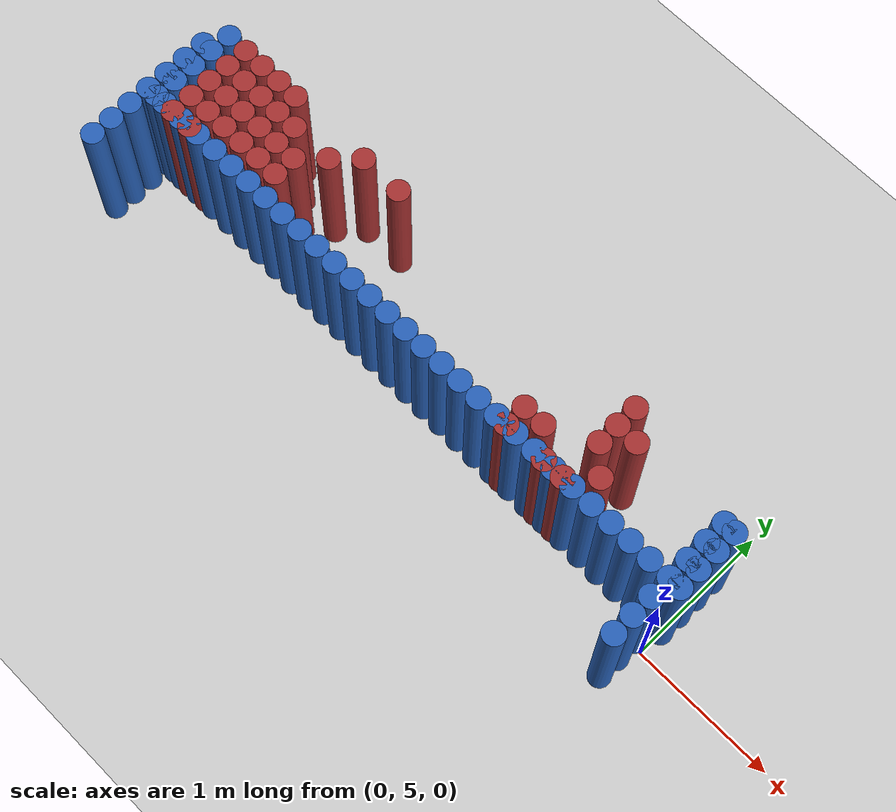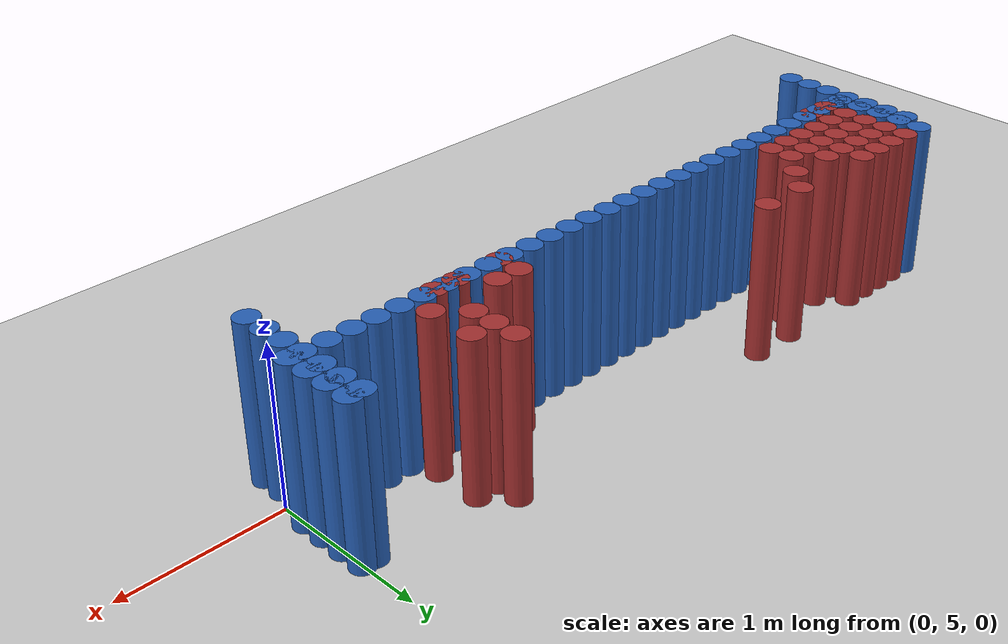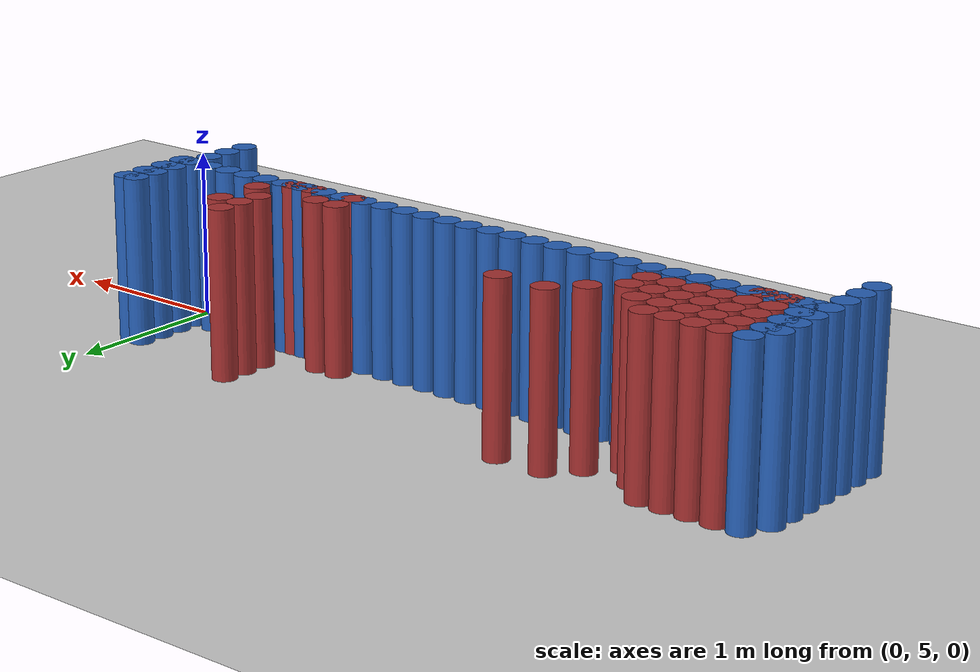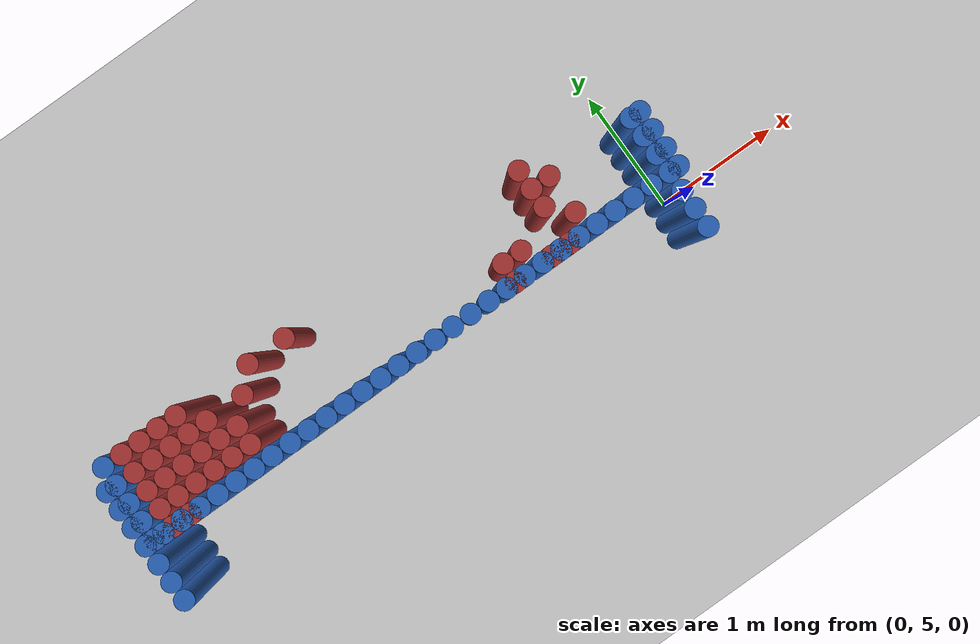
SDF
<sdf version="1.6">
 <world name="barn_world">
  <model name="ground_plane">
   <static>1</static>
   <link name="link">
    <collision name="collision">
     <geometry><plane><normal>0 0 1</normal><size>100 100</size></plane></geometry>
    </collision>
    <visual name="visual">
     <geometry><plane><normal>0 0 1</normal><size>100 100</size></plane></geometry>
     <material>
      <script><uri>file://media/materials/scripts/gazebo.material</uri><name>Gazebo/Grey</name></script>
     </material>
    </visual>
   </link>
  </model>
  <model name="unit_cylinder_90">
   <static>1</static>
   <pose>-0.0750 4.7250 0.5 0 0 0</pose>
   <link name="link">
    <collision name="collision">
     <geometry><cylinder><radius>0.075</radius><length>1</length></cylinder></geometry>
    </collision>
    <visual name="visual">
     <geometry><cylinder><radius>0.075</radius><length>1</length></cylinder></geometry>
     <material><ambient>0.152 0.379 0.72 1</ambient><diffuse>0.152 0.379 0.72 1</diffuse></material>
    </visual>
   </link>
  </model>
  <model name="unit_cylinder_91">
   <static>1</static>
   <pose>-4.4250 4.7250 0.5 0 0 0</pose>
   <link name="link">
    <collision name="collision">
     <geometry><cylinder><radius>0.075</radius><length>1</length></cylinder></geometry>
    </collision>
    <visual name="visual">
     <geometry><cylinder><radius>0.075</radius><length>1</length></cylinder></geometry>
     <material><ambient>0.152 0.379 0.72 1</ambient><diffuse>0.152 0.379 0.72 1</diffuse></material>
    </visual>
   </link>
  </model>
  <model name="unit_cylinder_92">
   <static>1</static>
   <pose>-0.0750 4.8750 0.5 0 0 0</pose>
   <link name="link">
    <collision name="collision">
     <geometry><cylinder><radius>0.075</radius><length>1</length></cylinder></geometry>
    </collision>
    <visual name="visual">
     <geometry><cylinder><radius>0.075</radius><length>1</length></cylinder></geometry>
     <material><ambient>0.152 0.379 0.72 1</ambient><diffuse>0.152 0.379 0.72 1</diffuse></material>
    </visual>
   </link>
  </model>
  <model name="unit_cylinder_93">
   <static>1</static>
   <pose>-4.4250 4.8750 0.5 0 0 0</pose>
   <link name="link">
    <collision name="collision">
     <geometry><cylinder><radius>0.075</radius><length>1</length></cylinder></geometry>
    </collision>
    <visual name="visual">
     <geometry><cylinder><radius>0.075</radius><length>1</length></cylinder></geometry>
     <material><ambient>0.152 0.379 0.72 1</ambient><diffuse>0.152 0.379 0.72 1</diffuse></material>
    </visual>
   </link>
  </model>
  <model name="unit_cylinder_94">
   <static>1</static>
   <pose>-0.0750 5.0250 0.5 0 0 0</pose>
   <link name="link">
    <collision name="collision">
     <geometry><cylinder><radius>0.075</radius><length>1</length></cylinder></geometry>
    </collision>
    <visual name="visual">
     <geometry><cylinder><radius>0.075</radius><length>1</length></cylinder></geometry>
     <material><ambient>0.152 0.379 0.72 1</ambient><diffuse>0.152 0.379 0.72 1</diffuse></material>
    </visual>
   </link>
  </model>
  <model name="unit_cylinder_95">
   <static>1</static>
   <pose>-4.4250 5.0250 0.5 0 0 0</pose>
   <link name="link">
    <collision name="collision">
     <geometry><cylinder><radius>0.075</radius><length>1</length></cylinder></geometry>
    </collision>
    <visual name="visual">
     <geometry><cylinder><radius>0.075</radius><length>1</length></cylinder></geometry>
     <material><ambient>0.152 0.379 0.72 1</ambient><diffuse>0.152 0.379 0.72 1</diffuse></material>
    </visual>
   </link>
  </model>
  <model name="unit_cylinder_96">
   <static>1</static>
   <pose>-0.0750 5.1750 0.5 0 0 0</pose>
   <link name="link">
    <collision name="collision">
     <geometry><cylinder><radius>0.075</radius><length>1</length></cylinder></geometry>
    </collision>
    <visual name="visual">
     <geometry><cylinder><radius>0.075</radius><length>1</length></cylinder></geometry>
     <material><ambient>0.152 0.379 0.72 1</ambient><diffuse>0.152 0.379 0.72 1</diffuse></material>
    </visual>
   </link>
  </model>
  <model name="unit_cylinder_97">
   <static>1</static>
   <pose>-0.2250 5.1750 0.5 0 0 0</pose>
   <link name="link">
    <collision name="collision">
     <geometry><cylinder><radius>0.075</radius><length>1</length></cylinder></geometry>
    </collision>
    <visual name="visual">
     <geometry><cylinder><radius>0.075</radius><length>1</length></cylinder></geometry>
     <material><ambient>0.152 0.379 0.72 1</ambient><diffuse>0.152 0.379 0.72 1</diffuse></material>
    </visual>
   </link>
  </model>
  <model name="unit_cylinder_98">
   <static>1</static>
   <pose>-0.3750 5.1750 0.5 0 0 0</pose>
   <link name="link">
    <collision name="collision">
     <geometry><cylinder><radius>0.075</radius><length>1</length></cylinder></geometry>
    </collision>
    <visual name="visual">
     <geometry><cylinder><radius>0.075</radius><length>1</length></cylinder></geometry>
     <material><ambient>0.152 0.379 0.72 1</ambient><diffuse>0.152 0.379 0.72 1</diffuse></material>
    </visual>
   </link>
  </model>
  <model name="unit_cylinder_99">
   <static>1</static>
   <pose>-0.5250 5.1750 0.5 0 0 0</pose>
   <link name="link">
    <collision name="collision">
     <geometry><cylinder><radius>0.075</radius><length>1</length></cylinder></geometry>
    </collision>
    <visual name="visual">
     <geometry><cylinder><radius>0.075</radius><length>1</length></cylinder></geometry>
     <material><ambient>0.152 0.379 0.72 1</ambient><diffuse>0.152 0.379 0.72 1</diffuse></material>
    </visual>
   </link>
  </model>
  <model name="unit_cylinder_100">
   <static>1</static>
   <pose>-0.6750 5.1750 0.5 0 0 0</pose>
   <link name="link">
    <collision name="collision">
     <geometry><cylinder><radius>0.075</radius><length>1</length></cylinder></geometry>
    </collision>
    <visual name="visual">
     <geometry><cylinder><radius>0.075</radius><length>1</length></cylinder></geometry>
     <material><ambient>0.152 0.379 0.72 1</ambient><diffuse>0.152 0.379 0.72 1</diffuse></material>
    </visual>
   </link>
  </model>
  <model name="unit_cylinder_101">
   <static>1</static>
   <pose>-0.8250 5.1750 0.5 0 0 0</pose>
   <link name="link">
    <collision name="collision">
     <geometry><cylinder><radius>0.075</radius><length>1</length></cylinder></geometry>
    </collision>
    <visual name="visual">
     <geometry><cylinder><radius>0.075</radius><length>1</length></cylinder></geometry>
     <material><ambient>0.152 0.379 0.72 1</ambient><diffuse>0.152 0.379 0.72 1</diffuse></material>
    </visual>
   </link>
  </model>
  <model name="unit_cylinder_102">
   <static>1</static>
   <pose>-0.9750 5.1750 0.5 0 0 0</pose>
   <link name="link">
    <collision name="collision">
     <geometry><cylinder><radius>0.075</radius><length>1</length></cylinder></geometry>
    </collision>
    <visual name="visual">
     <geometry><cylinder><radius>0.075</radius><length>1</length></cylinder></geometry>
     <material><ambient>0.152 0.379 0.72 1</ambient><diffuse>0.152 0.379 0.72 1</diffuse></material>
    </visual>
   </link>
  </model>
  <model name="unit_cylinder_103">
   <static>1</static>
   <pose>-1.1250 5.1750 0.5 0 0 0</pose>
   <link name="link">
    <collision name="collision">
     <geometry><cylinder><radius>0.075</radius><length>1</length></cylinder></geometry>
    </collision>
    <visual name="visual">
     <geometry><cylinder><radius>0.075</radius><length>1</length></cylinder></geometry>
     <material><ambient>0.152 0.379 0.72 1</ambient><diffuse>0.152 0.379 0.72 1</diffuse></material>
    </visual>
   </link>
  </model>
  <model name="unit_cylinder_104">
   <static>1</static>
   <pose>-1.2750 5.1750 0.5 0 0 0</pose>
   <link name="link">
    <collision name="collision">
     <geometry><cylinder><radius>0.075</radius><length>1</length></cylinder></geometry>
    </collision>
    <visual name="visual">
     <geometry><cylinder><radius>0.075</radius><length>1</length></cylinder></geometry>
     <material><ambient>0.152 0.379 0.72 1</ambient><diffuse>0.152 0.379 0.72 1</diffuse></material>
    </visual>
   </link>
  </model>
  <model name="unit_cylinder_105">
   <static>1</static>
   <pose>-1.4250 5.1750 0.5 0 0 0</pose>
   <link name="link">
    <collision name="collision">
     <geometry><cylinder><radius>0.075</radius><length>1</length></cylinder></geometry>
    </collision>
    <visual name="visual">
     <geometry><cylinder><radius>0.075</radius><length>1</length></cylinder></geometry>
     <material><ambient>0.152 0.379 0.72 1</ambient><diffuse>0.152 0.379 0.72 1</diffuse></material>
    </visual>
   </link>
  </model>
  <model name="unit_cylinder_106">
   <static>1</static>
   <pose>-1.5750 5.1750 0.5 0 0 0</pose>
   <link name="link">
    <collision name="collision">
     <geometry><cylinder><radius>0.075</radius><length>1</length></cylinder></geometry>
    </collision>
    <visual name="visual">
     <geometry><cylinder><radius>0.075</radius><length>1</length></cylinder></geometry>
     <material><ambient>0.152 0.379 0.72 1</ambient><diffuse>0.152 0.379 0.72 1</diffuse></material>
    </visual>
   </link>
  </model>
  <model name="unit_cylinder_107">
   <static>1</static>
   <pose>-1.7250 5.1750 0.5 0 0 0</pose>
   <link name="link">
    <collision name="collision">
     <geometry><cylinder><radius>0.075</radius><length>1</length></cylinder></geometry>
    </collision>
    <visual name="visual">
     <geometry><cylinder><radius>0.075</radius><length>1</length></cylinder></geometry>
     <material><ambient>0.152 0.379 0.72 1</ambient><diffuse>0.152 0.379 0.72 1</diffuse></material>
    </visual>
   </link>
  </model>
  <model name="unit_cylinder_108">
   <static>1</static>
   <pose>-1.8750 5.1750 0.5 0 0 0</pose>
   <link name="link">
    <collision name="collision">
     <geometry><cylinder><radius>0.075</radius><length>1</length></cylinder></geometry>
    </collision>
    <visual name="visual">
     <geometry><cylinder><radius>0.075</radius><length>1</length></cylinder></geometry>
     <material><ambient>0.152 0.379 0.72 1</ambient><diffuse>0.152 0.379 0.72 1</diffuse></material>
    </visual>
   </link>
  </model>
  <model name="unit_cylinder_109">
   <static>1</static>
   <pose>-2.0250 5.1750 0.5 0 0 0</pose>
   <link name="link">
    <collision name="collision">
     <geometry><cylinder><radius>0.075</radius><length>1</length></cylinder></geometry>
    </collision>
    <visual name="visual">
     <geometry><cylinder><radius>0.075</radius><length>1</length></cylinder></geometry>
     <material><ambient>0.152 0.379 0.72 1</ambient><diffuse>0.152 0.379 0.72 1</diffuse></material>
    </visual>
   </link>
  </model>
  <model name="unit_cylinder_110">
   <static>1</static>
   <pose>-2.1750 5.1750 0.5 0 0 0</pose>
   <link name="link">
    <collision name="collision">
     <geometry><cylinder><radius>0.075</radius><length>1</length></cylinder></geometry>
    </collision>
    <visual name="visual">
     <geometry><cylinder><radius>0.075</radius><length>1</length></cylinder></geometry>
     <material><ambient>0.152 0.379 0.72 1</ambient><diffuse>0.152 0.379 0.72 1</diffuse></material>
    </visual>
   </link>
  </model>
  <model name="unit_cylinder_111">
   <static>1</static>
   <pose>-2.3250 5.1750 0.5 0 0 0</pose>
   <link name="link">
    <collision name="collision">
     <geometry><cylinder><radius>0.075</radius><length>1</length></cylinder></geometry>
    </collision>
    <visual name="visual">
     <geometry><cylinder><radius>0.075</radius><length>1</length></cylinder></geometry>
     <material><ambient>0.152 0.379 0.72 1</ambient><diffuse>0.152 0.379 0.72 1</diffuse></material>
    </visual>
   </link>
  </model>
  <model name="unit_cylinder_112">
   <static>1</static>
   <pose>-2.4750 5.1750 0.5 0 0 0</pose>
   <link name="link">
    <collision name="collision">
     <geometry><cylinder><radius>0.075</radius><length>1</length></cylinder></geometry>
    </collision>
    <visual name="visual">
     <geometry><cylinder><radius>0.075</radius><length>1</length></cylinder></geometry>
     <material><ambient>0.152 0.379 0.72 1</ambient><diffuse>0.152 0.379 0.72 1</diffuse></material>
    </visual>
   </link>
  </model>
  <model name="unit_cylinder_113">
   <static>1</static>
   <pose>-2.6250 5.1750 0.5 0 0 0</pose>
   <link name="link">
    <collision name="collision">
     <geometry><cylinder><radius>0.075</radius><length>1</length></cylinder></geometry>
    </collision>
    <visual name="visual">
     <geometry><cylinder><radius>0.075</radius><length>1</length></cylinder></geometry>
     <material><ambient>0.152 0.379 0.72 1</ambient><diffuse>0.152 0.379 0.72 1</diffuse></material>
    </visual>
   </link>
  </model>
  <model name="unit_cylinder_114">
   <static>1</static>
   <pose>-2.7750 5.1750 0.5 0 0 0</pose>
   <link name="link">
    <collision name="collision">
     <geometry><cylinder><radius>0.075</radius><length>1</length></cylinder></geometry>
    </collision>
    <visual name="visual">
     <geometry><cylinder><radius>0.075</radius><length>1</length></cylinder></geometry>
     <material><ambient>0.152 0.379 0.72 1</ambient><diffuse>0.152 0.379 0.72 1</diffuse></material>
    </visual>
   </link>
  </model>
  <model name="unit_cylinder_115">
   <static>1</static>
   <pose>-2.9250 5.1750 0.5 0 0 0</pose>
   <link name="link">
    <collision name="collision">
     <geometry><cylinder><radius>0.075</radius><length>1</length></cylinder></geometry>
    </collision>
    <visual name="visual">
     <geometry><cylinder><radius>0.075</radius><length>1</length></cylinder></geometry>
     <material><ambient>0.152 0.379 0.72 1</ambient><diffuse>0.152 0.379 0.72 1</diffuse></material>
    </visual>
   </link>
  </model>
  <model name="unit_cylinder_116">
   <static>1</static>
   <pose>-3.0750 5.1750 0.5 0 0 0</pose>
   <link name="link">
    <collision name="collision">
     <geometry><cylinder><radius>0.075</radius><length>1</length></cylinder></geometry>
    </collision>
    <visual name="visual">
     <geometry><cylinder><radius>0.075</radius><length>1</length></cylinder></geometry>
     <material><ambient>0.152 0.379 0.72 1</ambient><diffuse>0.152 0.379 0.72 1</diffuse></material>
    </visual>
   </link>
  </model>
  <model name="unit_cylinder_117">
   <static>1</static>
   <pose>-3.2250 5.1750 0.5 0 0 0</pose>
   <link name="link">
    <collision name="collision">
     <geometry><cylinder><radius>0.075</radius><length>1</length></cylinder></geometry>
    </collision>
    <visual name="visual">
     <geometry><cylinder><radius>0.075</radius><length>1</length></cylinder></geometry>
     <material><ambient>0.152 0.379 0.72 1</ambient><diffuse>0.152 0.379 0.72 1</diffuse></material>
    </visual>
   </link>
  </model>
  <model name="unit_cylinder_118">
   <static>1</static>
   <pose>-3.3750 5.1750 0.5 0 0 0</pose>
   <link name="link">
    <collision name="collision">
     <geometry><cylinder><radius>0.075</radius><length>1</length></cylinder></geometry>
    </collision>
    <visual name="visual">
     <geometry><cylinder><radius>0.075</radius><length>1</length></cylinder></geometry>
     <material><ambient>0.152 0.379 0.72 1</ambient><diffuse>0.152 0.379 0.72 1</diffuse></material>
    </visual>
   </link>
  </model>
  <model name="unit_cylinder_119">
   <static>1</static>
   <pose>-3.5250 5.1750 0.5 0 0 0</pose>
   <link name="link">
    <collision name="collision">
     <geometry><cylinder><radius>0.075</radius><length>1</length></cylinder></geometry>
    </collision>
    <visual name="visual">
     <geometry><cylinder><radius>0.075</radius><length>1</length></cylinder></geometry>
     <material><ambient>0.152 0.379 0.72 1</ambient><diffuse>0.152 0.379 0.72 1</diffuse></material>
    </visual>
   </link>
  </model>
  <model name="unit_cylinder_120">
   <static>1</static>
   <pose>-3.6750 5.1750 0.5 0 0 0</pose>
   <link name="link">
    <collision name="collision">
     <geometry><cylinder><radius>0.075</radius><length>1</length></cylinder></geometry>
    </collision>
    <visual name="visual">
     <geometry><cylinder><radius>0.075</radius><length>1</length></cylinder></geometry>
     <material><ambient>0.152 0.379 0.72 1</ambient><diffuse>0.152 0.379 0.72 1</diffuse></material>
    </visual>
   </link>
  </model>
  <model name="unit_cylinder_121">
   <static>1</static>
   <pose>-3.8250 5.1750 0.5 0 0 0</pose>
   <link name="link">
    <collision name="collision">
     <geometry><cylinder><radius>0.075</radius><length>1</length></cylinder></geometry>
    </collision>
    <visual name="visual">
     <geometry><cylinder><radius>0.075</radius><length>1</length></cylinder></geometry>
     <material><ambient>0.152 0.379 0.72 1</ambient><diffuse>0.152 0.379 0.72 1</diffuse></material>
    </visual>
   </link>
  </model>
  <model name="unit_cylinder_122">
   <static>1</static>
   <pose>-3.9750 5.1750 0.5 0 0 0</pose>
   <link name="link">
    <collision name="collision">
     <geometry><cylinder><radius>0.075</radius><length>1</length></cylinder></geometry>
    </collision>
    <visual name="visual">
     <geometry><cylinder><radius>0.075</radius><length>1</length></cylinder></geometry>
     <material><ambient>0.152 0.379 0.72 1</ambient><diffuse>0.152 0.379 0.72 1</diffuse></material>
    </visual>
   </link>
  </model>
  <model name="unit_cylinder_123">
   <static>1</static>
   <pose>-4.1250 5.1750 0.5 0 0 0</pose>
   <link name="link">
    <collision name="collision">
     <geometry><cylinder><radius>0.075</radius><length>1</length></cylinder></geometry>
    </collision>
    <visual name="visual">
     <geometry><cylinder><radius>0.075</radius><length>1</length></cylinder></geometry>
     <material><ambient>0.152 0.379 0.72 1</ambient><diffuse>0.152 0.379 0.72 1</diffuse></material>
    </visual>
   </link>
  </model>
  <model name="unit_cylinder_124">
   <static>1</static>
   <pose>-4.2750 5.1750 0.5 0 0 0</pose>
   <link name="link">
    <collision name="collision">
     <geometry><cylinder><radius>0.075</radius><length>1</length></cylinder></geometry>
    </collision>
    <visual name="visual">
     <geometry><cylinder><radius>0.075</radius><length>1</length></cylinder></geometry>
     <material><ambient>0.152 0.379 0.72 1</ambient><diffuse>0.152 0.379 0.72 1</diffuse></material>
    </visual>
   </link>
  </model>
  <model name="unit_cylinder_125">
   <static>1</static>
   <pose>-4.4250 5.1750 0.5 0 0 0</pose>
   <link name="link">
    <collision name="collision">
     <geometry><cylinder><radius>0.075</radius><length>1</length></cylinder></geometry>
    </collision>
    <visual name="visual">
     <geometry><cylinder><radius>0.075</radius><length>1</length></cylinder></geometry>
     <material><ambient>0.152 0.379 0.72 1</ambient><diffuse>0.152 0.379 0.72 1</diffuse></material>
    </visual>
   </link>
  </model>
  <model name="unit_cylinder_126">
   <static>1</static>
   <pose>-4.3500 5.1750 0.5 0 0 0</pose>
   <link name="link">
    <collision name="collision">
     <geometry><cylinder><radius>0.075</radius><length>1</length></cylinder></geometry>
    </collision>
    <visual name="visual">
     <geometry><cylinder><radius>0.075</radius><length>1</length></cylinder></geometry>
     <material><ambient>0.152 0.379 0.72 1</ambient><diffuse>0.152 0.379 0.72 1</diffuse></material>
    </visual>
   </link>
  </model>
  <model name="unit_cylinder_127">
   <static>1</static>
   <pose>-4.3500 5.3250 0.5 0 0 0</pose>
   <link name="link">
    <collision name="collision">
     <geometry><cylinder><radius>0.075</radius><length>1</length></cylinder></geometry>
    </collision>
    <visual name="visual">
     <geometry><cylinder><radius>0.075</radius><length>1</length></cylinder></geometry>
     <material><ambient>0.152 0.379 0.72 1</ambient><diffuse>0.152 0.379 0.72 1</diffuse></material>
    </visual>
   </link>
  </model>
  <model name="unit_cylinder_128">
   <static>1</static>
   <pose>-4.3500 5.4750 0.5 0 0 0</pose>
   <link name="link">
    <collision name="collision">
     <geometry><cylinder><radius>0.075</radius><length>1</length></cylinder></geometry>
    </collision>
    <visual name="visual">
     <geometry><cylinder><radius>0.075</radius><length>1</length></cylinder></geometry>
     <material><ambient>0.152 0.379 0.72 1</ambient><diffuse>0.152 0.379 0.72 1</diffuse></material>
    </visual>
   </link>
  </model>
  <model name="unit_cylinder_129">
   <static>1</static>
   <pose>-4.3500 5.6250 0.5 0 0 0</pose>
   <link name="link">
    <collision name="collision">
     <geometry><cylinder><radius>0.075</radius><length>1</length></cylinder></geometry>
    </collision>
    <visual name="visual">
     <geometry><cylinder><radius>0.075</radius><length>1</length></cylinder></geometry>
     <material><ambient>0.152 0.379 0.72 1</ambient><diffuse>0.152 0.379 0.72 1</diffuse></material>
    </visual>
   </link>
  </model>
  <model name="unit_cylinder_130">
   <static>1</static>
   <pose>-4.3500 5.7750 0.5 0 0 0</pose>
   <link name="link">
    <collision name="collision">
     <geometry><cylinder><radius>0.075</radius><length>1</length></cylinder></geometry>
    </collision>
    <visual name="visual">
     <geometry><cylinder><radius>0.075</radius><length>1</length></cylinder></geometry>
     <material><ambient>0.152 0.379 0.72 1</ambient><diffuse>0.152 0.379 0.72 1</diffuse></material>
    </visual>
   </link>
  </model>
  <model name="unit_cylinder_156">
   <static>1</static>
   <pose>-4.2000 5.1750 0.5 0 0 0</pose>
   <link name="link">
    <collision name="collision">
     <geometry><cylinder><radius>0.075</radius><length>1</length></cylinder></geometry>
    </collision>
    <visual name="visual">
     <geometry><cylinder><radius>0.075</radius><length>1</length></cylinder></geometry>
     <material><ambient>0.648 0.192 0.192 1</ambient><diffuse>0.648 0.192 0.192 1</diffuse></material>
    </visual>
   </link>
  </model>
  <model name="unit_cylinder_157">
   <static>1</static>
   <pose>-4.2000 5.3250 0.5 0 0 0</pose>
   <link name="link">
    <collision name="collision">
     <geometry><cylinder><radius>0.075</radius><length>1</length></cylinder></geometry>
    </collision>
    <visual name="visual">
     <geometry><cylinder><radius>0.075</radius><length>1</length></cylinder></geometry>
     <material><ambient>0.648 0.192 0.192 1</ambient><diffuse>0.648 0.192 0.192 1</diffuse></material>
    </visual>
   </link>
  </model>
  <model name="unit_cylinder_158">
   <static>1</static>
   <pose>-4.2000 5.4750 0.5 0 0 0</pose>
   <link name="link">
    <collision name="collision">
     <geometry><cylinder><radius>0.075</radius><length>1</length></cylinder></geometry>
    </collision>
    <visual name="visual">
     <geometry><cylinder><radius>0.075</radius><length>1</length></cylinder></geometry>
     <material><ambient>0.648 0.192 0.192 1</ambient><diffuse>0.648 0.192 0.192 1</diffuse></material>
    </visual>
   </link>
  </model>
  <model name="unit_cylinder_159">
   <static>1</static>
   <pose>-4.2000 5.6250 0.5 0 0 0</pose>
   <link name="link">
    <collision name="collision">
     <geometry><cylinder><radius>0.075</radius><length>1</length></cylinder></geometry>
    </collision>
    <visual name="visual">
     <geometry><cylinder><radius>0.075</radius><length>1</length></cylinder></geometry>
     <material><ambient>0.648 0.192 0.192 1</ambient><diffuse>0.648 0.192 0.192 1</diffuse></material>
    </visual>
   </link>
  </model>
  <model name="unit_cylinder_160">
   <static>1</static>
   <pose>-4.2000 5.7750 0.5 0 0 0</pose>
   <link name="link">
    <collision name="collision">
     <geometry><cylinder><radius>0.075</radius><length>1</length></cylinder></geometry>
    </collision>
    <visual name="visual">
     <geometry><cylinder><radius>0.075</radius><length>1</length></cylinder></geometry>
     <material><ambient>0.648 0.192 0.192 1</ambient><diffuse>0.648 0.192 0.192 1</diffuse></material>
    </visual>
   </link>
  </model>
  <model name="unit_cylinder_175">
   <static>1</static>
   <pose>-4.0500 5.1750 0.5 0 0 0</pose>
   <link name="link">
    <collision name="collision">
     <geometry><cylinder><radius>0.075</radius><length>1</length></cylinder></geometry>
    </collision>
    <visual name="visual">
     <geometry><cylinder><radius>0.075</radius><length>1</length></cylinder></geometry>
     <material><ambient>0.648 0.192 0.192 1</ambient><diffuse>0.648 0.192 0.192 1</diffuse></material>
    </visual>
   </link>
  </model>
  <model name="unit_cylinder_176">
   <static>1</static>
   <pose>-4.0500 5.3250 0.5 0 0 0</pose>
   <link name="link">
    <collision name="collision">
     <geometry><cylinder><radius>0.075</radius><length>1</length></cylinder></geometry>
    </collision>
    <visual name="visual">
     <geometry><cylinder><radius>0.075</radius><length>1</length></cylinder></geometry>
     <material><ambient>0.648 0.192 0.192 1</ambient><diffuse>0.648 0.192 0.192 1</diffuse></material>
    </visual>
   </link>
  </model>
  <model name="unit_cylinder_177">
   <static>1</static>
   <pose>-4.0500 5.4750 0.5 0 0 0</pose>
   <link name="link">
    <collision name="collision">
     <geometry><cylinder><radius>0.075</radius><length>1</length></cylinder></geometry>
    </collision>
    <visual name="visual">
     <geometry><cylinder><radius>0.075</radius><length>1</length></cylinder></geometry>
     <material><ambient>0.648 0.192 0.192 1</ambient><diffuse>0.648 0.192 0.192 1</diffuse></material>
    </visual>
   </link>
  </model>
  <model name="unit_cylinder_178">
   <static>1</static>
   <pose>-4.0500 5.6250 0.5 0 0 0</pose>
   <link name="link">
    <collision name="collision">
     <geometry><cylinder><radius>0.075</radius><length>1</length></cylinder></geometry>
    </collision>
    <visual name="visual">
     <geometry><cylinder><radius>0.075</radius><length>1</length></cylinder></geometry>
     <material><ambient>0.648 0.192 0.192 1</ambient><diffuse>0.648 0.192 0.192 1</diffuse></material>
    </visual>
   </link>
  </model>
  <model name="unit_cylinder_179">
   <static>1</static>
   <pose>-4.0500 5.7750 0.5 0 0 0</pose>
   <link name="link">
    <collision name="collision">
     <geometry><cylinder><radius>0.075</radius><length>1</length></cylinder></geometry>
    </collision>
    <visual name="visual">
     <geometry><cylinder><radius>0.075</radius><length>1</length></cylinder></geometry>
     <material><ambient>0.648 0.192 0.192 1</ambient><diffuse>0.648 0.192 0.192 1</diffuse></material>
    </visual>
   </link>
  </model>
  <model name="unit_cylinder_186">
   <static>1</static>
   <pose>-3.9000 5.3250 0.5 0 0 0</pose>
   <link name="link">
    <collision name="collision">
     <geometry><cylinder><radius>0.075</radius><length>1</length></cylinder></geometry>
    </collision>
    <visual name="visual">
     <geometry><cylinder><radius>0.075</radius><length>1</length></cylinder></geometry>
     <material><ambient>0.648 0.192 0.192 1</ambient><diffuse>0.648 0.192 0.192 1</diffuse></material>
    </visual>
   </link>
  </model>
  <model name="unit_cylinder_187">
   <static>1</static>
   <pose>-3.9000 5.4750 0.5 0 0 0</pose>
   <link name="link">
    <collision name="collision">
     <geometry><cylinder><radius>0.075</radius><length>1</length></cylinder></geometry>
    </collision>
    <visual name="visual">
     <geometry><cylinder><radius>0.075</radius><length>1</length></cylinder></geometry>
     <material><ambient>0.648 0.192 0.192 1</ambient><diffuse>0.648 0.192 0.192 1</diffuse></material>
    </visual>
   </link>
  </model>
  <model name="unit_cylinder_188">
   <static>1</static>
   <pose>-3.9000 5.6250 0.5 0 0 0</pose>
   <link name="link">
    <collision name="collision">
     <geometry><cylinder><radius>0.075</radius><length>1</length></cylinder></geometry>
    </collision>
    <visual name="visual">
     <geometry><cylinder><radius>0.075</radius><length>1</length></cylinder></geometry>
     <material><ambient>0.648 0.192 0.192 1</ambient><diffuse>0.648 0.192 0.192 1</diffuse></material>
    </visual>
   </link>
  </model>
  <model name="unit_cylinder_189">
   <static>1</static>
   <pose>-3.9000 5.7750 0.5 0 0 0</pose>
   <link name="link">
    <collision name="collision">
     <geometry><cylinder><radius>0.075</radius><length>1</length></cylinder></geometry>
    </collision>
    <visual name="visual">
     <geometry><cylinder><radius>0.075</radius><length>1</length></cylinder></geometry>
     <material><ambient>0.648 0.192 0.192 1</ambient><diffuse>0.648 0.192 0.192 1</diffuse></material>
    </visual>
   </link>
  </model>
  <model name="unit_cylinder_196">
   <static>1</static>
   <pose>-3.7500 5.3250 0.5 0 0 0</pose>
   <link name="link">
    <collision name="collision">
     <geometry><cylinder><radius>0.075</radius><length>1</length></cylinder></geometry>
    </collision>
    <visual name="visual">
     <geometry><cylinder><radius>0.075</radius><length>1</length></cylinder></geometry>
     <material><ambient>0.648 0.192 0.192 1</ambient><diffuse>0.648 0.192 0.192 1</diffuse></material>
    </visual>
   </link>
  </model>
  <model name="unit_cylinder_197">
   <static>1</static>
   <pose>-3.7500 5.4750 0.5 0 0 0</pose>
   <link name="link">
    <collision name="collision">
     <geometry><cylinder><radius>0.075</radius><length>1</length></cylinder></geometry>
    </collision>
    <visual name="visual">
     <geometry><cylinder><radius>0.075</radius><length>1</length></cylinder></geometry>
     <material><ambient>0.648 0.192 0.192 1</ambient><diffuse>0.648 0.192 0.192 1</diffuse></material>
    </visual>
   </link>
  </model>
  <model name="unit_cylinder_198">
   <static>1</static>
   <pose>-3.7500 5.6250 0.5 0 0 0</pose>
   <link name="link">
    <collision name="collision">
     <geometry><cylinder><radius>0.075</radius><length>1</length></cylinder></geometry>
    </collision>
    <visual name="visual">
     <geometry><cylinder><radius>0.075</radius><length>1</length></cylinder></geometry>
     <material><ambient>0.648 0.192 0.192 1</ambient><diffuse>0.648 0.192 0.192 1</diffuse></material>
    </visual>
   </link>
  </model>
  <model name="unit_cylinder_199">
   <static>1</static>
   <pose>-3.7500 5.7750 0.5 0 0 0</pose>
   <link name="link">
    <collision name="collision">
     <geometry><cylinder><radius>0.075</radius><length>1</length></cylinder></geometry>
    </collision>
    <visual name="visual">
     <geometry><cylinder><radius>0.075</radius><length>1</length></cylinder></geometry>
     <material><ambient>0.648 0.192 0.192 1</ambient><diffuse>0.648 0.192 0.192 1</diffuse></material>
    </visual>
   </link>
  </model>
  <model name="unit_cylinder_207">
   <static>1</static>
   <pose>-3.6000 5.3250 0.5 0 0 0</pose>
   <link name="link">
    <collision name="collision">
     <geometry><cylinder><radius>0.075</radius><length>1</length></cylinder></geometry>
    </collision>
    <visual name="visual">
     <geometry><cylinder><radius>0.075</radius><length>1</length></cylinder></geometry>
     <material><ambient>0.648 0.192 0.192 1</ambient><diffuse>0.648 0.192 0.192 1</diffuse></material>
    </visual>
   </link>
  </model>
  <model name="unit_cylinder_208">
   <static>1</static>
   <pose>-3.6000 5.4750 0.5 0 0 0</pose>
   <link name="link">
    <collision name="collision">
     <geometry><cylinder><radius>0.075</radius><length>1</length></cylinder></geometry>
    </collision>
    <visual name="visual">
     <geometry><cylinder><radius>0.075</radius><length>1</length></cylinder></geometry>
     <material><ambient>0.648 0.192 0.192 1</ambient><diffuse>0.648 0.192 0.192 1</diffuse></material>
    </visual>
   </link>
  </model>
  <model name="unit_cylinder_209">
   <static>1</static>
   <pose>-3.6000 5.6250 0.5 0 0 0</pose>
   <link name="link">
    <collision name="collision">
     <geometry><cylinder><radius>0.075</radius><length>1</length></cylinder></geometry>
    </collision>
    <visual name="visual">
     <geometry><cylinder><radius>0.075</radius><length>1</length></cylinder></geometry>
     <material><ambient>0.648 0.192 0.192 1</ambient><diffuse>0.648 0.192 0.192 1</diffuse></material>
    </visual>
   </link>
  </model>
  <model name="unit_cylinder_217">
   <static>1</static>
   <pose>-3.4500 5.3250 0.5 0 0 0</pose>
   <link name="link">
    <collision name="collision">
     <geometry><cylinder><radius>0.075</radius><length>1</length></cylinder></geometry>
    </collision>
    <visual name="visual">
     <geometry><cylinder><radius>0.075</radius><length>1</length></cylinder></geometry>
     <material><ambient>0.648 0.192 0.192 1</ambient><diffuse>0.648 0.192 0.192 1</diffuse></material>
    </visual>
   </link>
  </model>
  <model name="unit_cylinder_218">
   <static>1</static>
   <pose>-3.4500 5.4750 0.5 0 0 0</pose>
   <link name="link">
    <collision name="collision">
     <geometry><cylinder><radius>0.075</radius><length>1</length></cylinder></geometry>
    </collision>
    <visual name="visual">
     <geometry><cylinder><radius>0.075</radius><length>1</length></cylinder></geometry>
     <material><ambient>0.648 0.192 0.192 1</ambient><diffuse>0.648 0.192 0.192 1</diffuse></material>
    </visual>
   </link>
  </model>
  <model name="unit_cylinder_226">
   <static>1</static>
   <pose>-3.3000 5.6250 0.5 0 0 0</pose>
   <link name="link">
    <collision name="collision">
     <geometry><cylinder><radius>0.075</radius><length>1</length></cylinder></geometry>
    </collision>
    <visual name="visual">
     <geometry><cylinder><radius>0.075</radius><length>1</length></cylinder></geometry>
     <material><ambient>0.648 0.192 0.192 1</ambient><diffuse>0.648 0.192 0.192 1</diffuse></material>
    </visual>
   </link>
  </model>
  <model name="unit_cylinder_229">
   <static>1</static>
   <pose>-3.1500 5.7750 0.5 0 0 0</pose>
   <link name="link">
    <collision name="collision">
     <geometry><cylinder><radius>0.075</radius><length>1</length></cylinder></geometry>
    </collision>
    <visual name="visual">
     <geometry><cylinder><radius>0.075</radius><length>1</length></cylinder></geometry>
     <material><ambient>0.648 0.192 0.192 1</ambient><diffuse>0.648 0.192 0.192 1</diffuse></material>
    </visual>
   </link>
  </model>
  <model name="unit_cylinder_234">
   <static>1</static>
   <pose>-2.8500 5.7750 0.5 0 0 0</pose>
   <link name="link">
    <collision name="collision">
     <geometry><cylinder><radius>0.075</radius><length>1</length></cylinder></geometry>
    </collision>
    <visual name="visual">
     <geometry><cylinder><radius>0.075</radius><length>1</length></cylinder></geometry>
     <material><ambient>0.648 0.192 0.192 1</ambient><diffuse>0.648 0.192 0.192 1</diffuse></material>
    </visual>
   </link>
  </model>
  <model name="unit_cylinder_263">
   <static>1</static>
   <pose>-1.3500 5.1750 0.5 0 0 0</pose>
   <link name="link">
    <collision name="collision">
     <geometry><cylinder><radius>0.075</radius><length>1</length></cylinder></geometry>
    </collision>
    <visual name="visual">
     <geometry><cylinder><radius>0.075</radius><length>1</length></cylinder></geometry>
     <material><ambient>0.648 0.192 0.192 1</ambient><diffuse>0.648 0.192 0.192 1</diffuse></material>
    </visual>
   </link>
  </model>
  <model name="unit_cylinder_264">
   <static>1</static>
   <pose>-1.3500 5.3250 0.5 0 0 0</pose>
   <link name="link">
    <collision name="collision">
     <geometry><cylinder><radius>0.075</radius><length>1</length></cylinder></geometry>
    </collision>
    <visual name="visual">
     <geometry><cylinder><radius>0.075</radius><length>1</length></cylinder></geometry>
     <material><ambient>0.648 0.192 0.192 1</ambient><diffuse>0.648 0.192 0.192 1</diffuse></material>
    </visual>
   </link>
  </model>
  <model name="unit_cylinder_266">
   <static>1</static>
   <pose>-1.2000 5.3250 0.5 0 0 0</pose>
   <link name="link">
    <collision name="collision">
     <geometry><cylinder><radius>0.075</radius><length>1</length></cylinder></geometry>
    </collision>
    <visual name="visual">
     <geometry><cylinder><radius>0.075</radius><length>1</length></cylinder></geometry>
     <material><ambient>0.648 0.192 0.192 1</ambient><diffuse>0.648 0.192 0.192 1</diffuse></material>
    </visual>
   </link>
  </model>
  <model name="unit_cylinder_269">
   <static>1</static>
   <pose>-1.0500 5.1750 0.5 0 0 0</pose>
   <link name="link">
    <collision name="collision">
     <geometry><cylinder><radius>0.075</radius><length>1</length></cylinder></geometry>
    </collision>
    <visual name="visual">
     <geometry><cylinder><radius>0.075</radius><length>1</length></cylinder></geometry>
     <material><ambient>0.648 0.192 0.192 1</ambient><diffuse>0.648 0.192 0.192 1</diffuse></material>
    </visual>
   </link>
  </model>
  <model name="unit_cylinder_272">
   <static>1</static>
   <pose>-0.9000 5.1750 0.5 0 0 0</pose>
   <link name="link">
    <collision name="collision">
     <geometry><cylinder><radius>0.075</radius><length>1</length></cylinder></geometry>
    </collision>
    <visual name="visual">
     <geometry><cylinder><radius>0.075</radius><length>1</length></cylinder></geometry>
     <material><ambient>0.648 0.192 0.192 1</ambient><diffuse>0.648 0.192 0.192 1</diffuse></material>
    </visual>
   </link>
  </model>
  <model name="unit_cylinder_273">
   <static>1</static>
   <pose>-0.9000 5.4750 0.5 0 0 0</pose>
   <link name="link">
    <collision name="collision">
     <geometry><cylinder><radius>0.075</radius><length>1</length></cylinder></geometry>
    </collision>
    <visual name="visual">
     <geometry><cylinder><radius>0.075</radius><length>1</length></cylinder></geometry>
     <material><ambient>0.648 0.192 0.192 1</ambient><diffuse>0.648 0.192 0.192 1</diffuse></material>
    </visual>
   </link>
  </model>
  <model name="unit_cylinder_274">
   <static>1</static>
   <pose>-0.9000 5.6250 0.5 0 0 0</pose>
   <link name="link">
    <collision name="collision">
     <geometry><cylinder><radius>0.075</radius><length>1</length></cylinder></geometry>
    </collision>
    <visual name="visual">
     <geometry><cylinder><radius>0.075</radius><length>1</length></cylinder></geometry>
     <material><ambient>0.648 0.192 0.192 1</ambient><diffuse>0.648 0.192 0.192 1</diffuse></material>
    </visual>
   </link>
  </model>
  <model name="unit_cylinder_275">
   <static>1</static>
   <pose>-0.9000 5.7750 0.5 0 0 0</pose>
   <link name="link">
    <collision name="collision">
     <geometry><cylinder><radius>0.075</radius><length>1</length></cylinder></geometry>
    </collision>
    <visual name="visual">
     <geometry><cylinder><radius>0.075</radius><length>1</length></cylinder></geometry>
     <material><ambient>0.648 0.192 0.192 1</ambient><diffuse>0.648 0.192 0.192 1</diffuse></material>
    </visual>
   </link>
  </model>
  <model name="unit_cylinder_279">
   <static>1</static>
   <pose>-0.7500 5.3250 0.5 0 0 0</pose>
   <link name="link">
    <collision name="collision">
     <geometry><cylinder><radius>0.075</radius><length>1</length></cylinder></geometry>
    </collision>
    <visual name="visual">
     <geometry><cylinder><radius>0.075</radius><length>1</length></cylinder></geometry>
     <material><ambient>0.648 0.192 0.192 1</ambient><diffuse>0.648 0.192 0.192 1</diffuse></material>
    </visual>
   </link>
  </model>
  <model name="unit_cylinder_280">
   <static>1</static>
   <pose>-0.7500 5.6250 0.5 0 0 0</pose>
   <link name="link">
    <collision name="collision">
     <geometry><cylinder><radius>0.075</radius><length>1</length></cylinder></geometry>
    </collision>
    <visual name="visual">
     <geometry><cylinder><radius>0.075</radius><length>1</length></cylinder></geometry>
     <material><ambient>0.648 0.192 0.192 1</ambient><diffuse>0.648 0.192 0.192 1</diffuse></material>
    </visual>
   </link>
  </model>
  <model name="unit_cylinder_330">
   <static>1</static>
   <pose>0.0000 5.1750 0.5 0 0 0</pose>
   <link name="link">
    <collision name="collision">
     <geometry><cylinder><radius>0.075</radius><length>1</length></cylinder></geometry>
    </collision>
    <visual name="visual">
     <geometry><cylinder><radius>0.075</radius><length>1</length></cylinder></geometry>
     <material><ambient>0.152 0.379 0.72 1</ambient><diffuse>0.152 0.379 0.72 1</diffuse></material>
    </visual>
   </link>
  </model>
  <model name="unit_cylinder_331">
   <static>1</static>
   <pose>0.0000 5.3250 0.5 0 0 0</pose>
   <link name="link">
    <collision name="collision">
     <geometry><cylinder><radius>0.075</radius><length>1</length></cylinder></geometry>
    </collision>
    <visual name="visual">
     <geometry><cylinder><radius>0.075</radius><length>1</length></cylinder></geometry>
     <material><ambient>0.152 0.379 0.72 1</ambient><diffuse>0.152 0.379 0.72 1</diffuse></material>
    </visual>
   </link>
  </model>
  <model name="unit_cylinder_332">
   <static>1</static>
   <pose>0.0000 5.4750 0.5 0 0 0</pose>
   <link name="link">
    <collision name="collision">
     <geometry><cylinder><radius>0.075</radius><length>1</length></cylinder></geometry>
    </collision>
    <visual name="visual">
     <geometry><cylinder><radius>0.075</radius><length>1</length></cylinder></geometry>
     <material><ambient>0.152 0.379 0.72 1</ambient><diffuse>0.152 0.379 0.72 1</diffuse></material>
    </visual>
   </link>
  </model>
  <model name="unit_cylinder_333">
   <static>1</static>
   <pose>0.0000 5.6250 0.5 0 0 0</pose>
   <link name="link">
    <collision name="collision">
     <geometry><cylinder><radius>0.075</radius><length>1</length></cylinder></geometry>
    </collision>
    <visual name="visual">
     <geometry><cylinder><radius>0.075</radius><length>1</length></cylinder></geometry>
     <material><ambient>0.152 0.379 0.72 1</ambient><diffuse>0.152 0.379 0.72 1</diffuse></material>
    </visual>
   </link>
  </model>
  <model name="unit_cylinder_390">
   <static>1</static>
   <pose>-0.0750 5.1750 0.5 0 0 0</pose>
   <link name="link">
    <collision name="collision">
     <geometry><cylinder><radius>0.075</radius><length>1</length></cylinder></geometry>
    </collision>
    <visual name="visual">
     <geometry><cylinder><radius>0.075</radius><length>1</length></cylinder></geometry>
     <material><ambient>0.152 0.379 0.72 1</ambient><diffuse>0.152 0.379 0.72 1</diffuse></material>
    </visual>
   </link>
  </model>
  <model name="unit_cylinder_391">
   <static>1</static>
   <pose>-4.4250 5.1750 0.5 0 0 0</pose>
   <link name="link">
    <collision name="collision">
     <geometry><cylinder><radius>0.075</radius><length>1</length></cylinder></geometry>
    </collision>
    <visual name="visual">
     <geometry><cylinder><radius>0.075</radius><length>1</length></cylinder></geometry>
     <material><ambient>0.152 0.379 0.72 1</ambient><diffuse>0.152 0.379 0.72 1</diffuse></material>
    </visual>
   </link>
  </model>
  <model name="unit_cylinder_392">
   <static>1</static>
   <pose>-0.0750 5.3250 0.5 0 0 0</pose>
   <link name="link">
    <collision name="collision">
     <geometry><cylinder><radius>0.075</radius><length>1</length></cylinder></geometry>
    </collision>
    <visual name="visual">
     <geometry><cylinder><radius>0.075</radius><length>1</length></cylinder></geometry>
     <material><ambient>0.152 0.379 0.72 1</ambient><diffuse>0.152 0.379 0.72 1</diffuse></material>
    </visual>
   </link>
  </model>
  <model name="unit_cylinder_393">
   <static>1</static>
   <pose>-4.4250 5.3250 0.5 0 0 0</pose>
   <link name="link">
    <collision name="collision">
     <geometry><cylinder><radius>0.075</radius><length>1</length></cylinder></geometry>
    </collision>
    <visual name="visual">
     <geometry><cylinder><radius>0.075</radius><length>1</length></cylinder></geometry>
     <material><ambient>0.152 0.379 0.72 1</ambient><diffuse>0.152 0.379 0.72 1</diffuse></material>
    </visual>
   </link>
  </model>
  <model name="unit_cylinder_394">
   <static>1</static>
   <pose>-0.0750 5.4750 0.5 0 0 0</pose>
   <link name="link">
    <collision name="collision">
     <geometry><cylinder><radius>0.075</radius><length>1</length></cylinder></geometry>
    </collision>
    <visual name="visual">
     <geometry><cylinder><radius>0.075</radius><length>1</length></cylinder></geometry>
     <material><ambient>0.152 0.379 0.72 1</ambient><diffuse>0.152 0.379 0.72 1</diffuse></material>
    </visual>
   </link>
  </model>
  <model name="unit_cylinder_395">
   <static>1</static>
   <pose>-4.4250 5.4750 0.5 0 0 0</pose>
   <link name="link">
    <collision name="collision">
     <geometry><cylinder><radius>0.075</radius><length>1</length></cylinder></geometry>
    </collision>
    <visual name="visual">
     <geometry><cylinder><radius>0.075</radius><length>1</length></cylinder></geometry>
     <material><ambient>0.152 0.379 0.72 1</ambient><diffuse>0.152 0.379 0.72 1</diffuse></material>
    </visual>
   </link>
  </model>
  <model name="unit_cylinder_396">
   <static>1</static>
   <pose>-0.0750 5.6250 0.5 0 0 0</pose>
   <link name="link">
    <collision name="collision">
     <geometry><cylinder><radius>0.075</radius><length>1</length></cylinder></geometry>
    </collision>
    <visual name="visual">
     <geometry><cylinder><radius>0.075</radius><length>1</length></cylinder></geometry>
     <material><ambient>0.152 0.379 0.72 1</ambient><diffuse>0.152 0.379 0.72 1</diffuse></material>
    </visual>
   </link>
  </model>
  <model name="unit_cylinder_397">
   <static>1</static>
   <pose>-4.4250 5.6250 0.5 0 0 0</pose>
   <link name="link">
    <collision name="collision">
     <geometry><cylinder><radius>0.075</radius><length>1</length></cylinder></geometry>
    </collision>
    <visual name="visual">
     <geometry><cylinder><radius>0.075</radius><length>1</length></cylinder></geometry>
     <material><ambient>0.152 0.379 0.72 1</ambient><diffuse>0.152 0.379 0.72 1</diffuse></material>
    </visual>
   </link>
  </model>
 </world>
</sdf>
